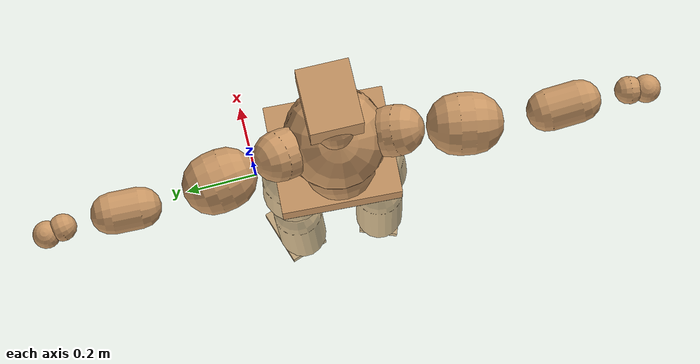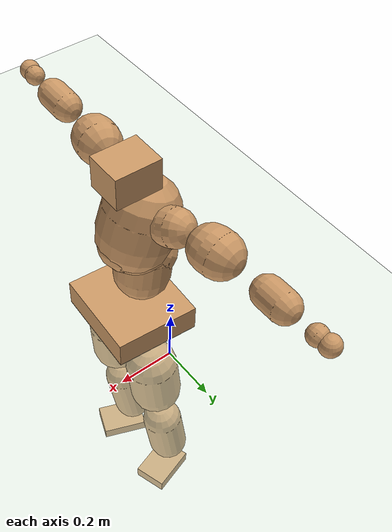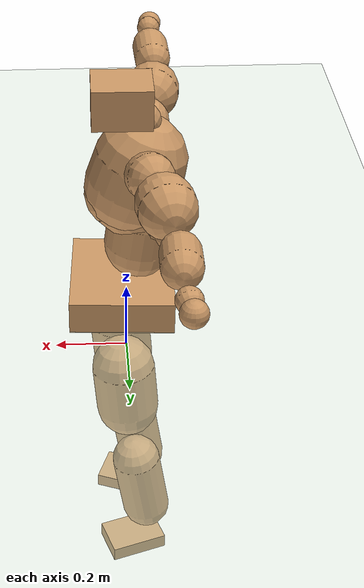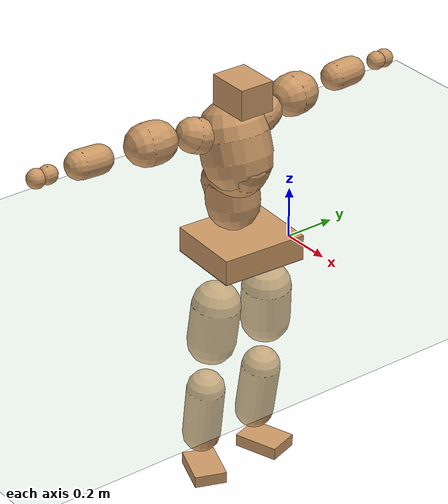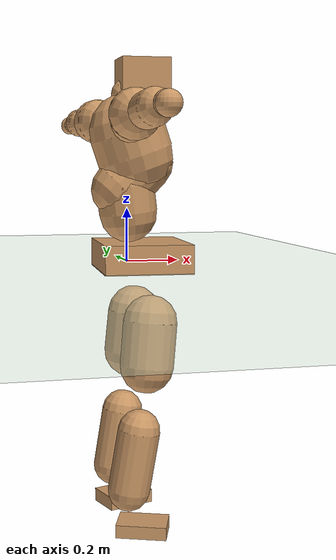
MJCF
<mujoco model="humanoid">
  <compiler coordinate="local" angle="radian"/>
  <default>
    <joint damping="0.0" armature="0.01" stiffness="0.0" limited="true"/>
    <geom conaffinity="1" condim="3" contype="7" margin="0.001" rgba="0.8 0.6 .4 1"/>
  </default>
  <asset>
    <texture type="skybox" builtin="gradient" rgb1=".4 .5 .6" rgb2="0 0 0" width="100" height="100"/>
    <texture builtin="flat" height="1278" mark="cross" markrgb="1 1 1" name="texgeom" random="0.01" rgb1="0.8 0.6 0.4" rgb2="0.8 0.6 0.4" type="cube" width="127"/>
    <texture builtin="checker" height="100" name="texplane" rgb1="0 0 0" rgb2="0.8 0.8 0.8" type="2d" width="100"/>
    <material name="MatPlane" reflectance="0.5" shininess="1" specular="1" texrepeat="60 60" texture="texplane"/>
    <material name="geom" texture="texgeom" texuniform="true"/>
  </asset>
  <worldbody>
    <light cutoff="100" diffuse="1 1 1" dir="-0 0 -1.3" directional="true" exponent="1" pos="0 0 1.3" specular=".1 .1 .1"/>
    <geom conaffinity="1" condim="3" name="floor" pos="0 0 0" rgba="0.8 0.9 0.8 1" size="100 100 .2" type="plane" material="MatPlane"/>
    <body name="Pelvis" pos="0.0054 -0.224 0.0613">
      <freejoint name="Pelvis"/>
      <geom type="box" contype="1" conaffinity="1" density="5359.374996" pos="-0.0057 0.0003 -0.0160" size="0.1529 0.1699 0.0502" quat="0.9996 0.0000 0.0000 -0.0281" name="Pelvis"/>
      <body name="L_Hip" pos="0.0079 0.1125 -0.1105">
        <joint name="L_Hip_x" type="hinge" pos="0 0 0" axis="1 0 0" stiffness="1600" damping="160" armature="0.02" range="-180.0000 180.0000"/>
        <joint name="L_Hip_y" type="hinge" pos="0 0 0" axis="0 1 0" stiffness="1600" damping="160" armature="0.02" range="-180.0000 180.0000"/>
        <joint name="L_Hip_z" type="hinge" pos="0 0 0" axis="0 0 1" stiffness="1600" damping="160" armature="0.02" range="-180.0000 180.0000"/>
        <geom type="capsule" contype="1" conaffinity="1" density="2040.816327" size="0.0943" fromto="-0.0111 0.0056 -0.1237 -0.0246 0.0124 -0.2749" name="L_Hip"/>
        <body name="L_Knee" pos="-0.0357 0.0179 -0.3986">
          <joint name="L_Knee_x" type="hinge" pos="0 0 0" axis="1 0 0" stiffness="1600" damping="160" armature="0.02" range="-180.0000 180.0000"/>
          <joint name="L_Knee_y" type="hinge" pos="0 0 0" axis="0 1 0" stiffness="1600" damping="160" armature="0.02" range="-180.0000 180.0000"/>
          <joint name="L_Knee_z" type="hinge" pos="0 0 0" axis="0 0 1" stiffness="1600" damping="160" armature="0.02" range="-180.0000 180.0000"/>
          <geom type="capsule" contype="1" conaffinity="1" density="1234.567901" size="0.0749" fromto="-0.0169 -0.0019 -0.1035 -0.0513 -0.0058 -0.3146" name="L_Knee"/>
          <body name="L_Ankle" pos="-0.0682 -0.0077 -0.418">
            <joint name="L_Ankle_x" type="hinge" pos="0 0 0" axis="1 0 0" stiffness="1600" damping="160" armature="0.02" range="-180.0000 180.0000"/>
            <joint name="L_Ankle_y" type="hinge" pos="0 0 0" axis="0 1 0" stiffness="1600" damping="160" armature="0.02" range="-180.0000 180.0000"/>
            <joint name="L_Ankle_z" type="hinge" pos="0 0 0" axis="0 0 1" stiffness="1600" damping="160" armature="0.02" range="-180.0000 180.0000"/>
            <geom type="box" contype="1" conaffinity="1" density="1000.000058" pos="0.0596 0.0195 -0.0300" size="0.0893 0.0623 0.0242" quat="0.9876 0.0000 0.0000 0.1572" name="L_Ankle"/>
            <body name="L_Toe" pos="0.1193 0.039 -0.06">
              <joint name="L_Toe_x" type="hinge" pos="0 0 0" axis="1 0 0" stiffness="1000" damping="100" armature="0.02" range="-180.0000 180.0000"/>
              <joint name="L_Toe_y" type="hinge" pos="0 0 0" axis="0 1 0" stiffness="1000" damping="100" armature="0.02" range="-180.0000 180.0000"/>
              <joint name="L_Toe_z" type="hinge" pos="0 0 0" axis="0 0 1" stiffness="1000" damping="100" armature="0.02" range="-180.0000 180.0000"/>
              <geom type="box" contype="1" conaffinity="1" density="7594283.285359" pos="0.0000 0.0000 0.0341" size="0.001 0.0029 0.0014" quat="0.9868 0.0000 0.0000 0.1622" name="L_Toe"/>
            </body>
          </body>
        </body>
      </body>
      <body name="R_Hip" pos="0.0098 -0.1094 -0.1117">
        <joint name="R_Hip_x" type="hinge" pos="0 0 0" axis="1 0 0" stiffness="1600" damping="160" armature="0.02" range="-180.0000 180.0000"/>
        <joint name="R_Hip_y" type="hinge" pos="0 0 0" axis="0 1 0" stiffness="1600" damping="160" armature="0.02" range="-180.0000 180.0000"/>
        <joint name="R_Hip_z" type="hinge" pos="0 0 0" axis="0 0 1" stiffness="1600" damping="160" armature="0.02" range="-180.0000 180.0000"/>
        <geom type="capsule" contype="1" conaffinity="1" density="2040.816327" size="0.0934" fromto="-0.0114 -0.0085 -0.1226 -0.0259 -0.0192 -0.2781" name="R_Hip"/>
        <body name="R_Knee" pos="-0.0373 -0.0277 -0.4007">
          <joint name="R_Knee_x" type="hinge" pos="0 0 0" axis="1 0 0" stiffness="1600" damping="160" armature="0.02" range="-180.0000 180.0000"/>
          <joint name="R_Knee_y" type="hinge" pos="0 0 0" axis="0 1 0" stiffness="1600" damping="160" armature="0.02" range="-180.0000 180.0000"/>
          <joint name="R_Knee_z" type="hinge" pos="0 0 0" axis="0 0 1" stiffness="1600" damping="160" armature="0.02" range="-180.0000 180.0000"/>
          <geom type="capsule" contype="1" conaffinity="1" density="1234.567901" size="0.074" fromto="-0.0166 0.0024 -0.1026 -0.0519 0.0076 -0.3201" name="R_Knee"/>
          <body name="R_Ankle" pos="-0.0686 0.01 -0.4227">
            <joint name="R_Ankle_x" type="hinge" pos="0 0 0" axis="1 0 0" stiffness="1600" damping="160" armature="0.02" range="-180.0000 180.0000"/>
            <joint name="R_Ankle_y" type="hinge" pos="0 0 0" axis="0 1 0" stiffness="1600" damping="160" armature="0.02" range="-180.0000 180.0000"/>
            <joint name="R_Ankle_z" type="hinge" pos="0 0 0" axis="0 0 1" stiffness="1600" damping="160" armature="0.02" range="-180.0000 180.0000"/>
            <geom type="box" contype="1" conaffinity="1" density="1000.000082" pos="0.0626 -0.0236 -0.0274" size="0.0887 0.0622 0.0229" quat="0.9838 0.0000 0.0000 -0.1793" name="R_Ankle"/>
            <body name="R_Toe" pos="0.1253 -0.0472 -0.0549">
              <joint name="R_Toe_x" type="hinge" pos="0 0 0" axis="1 0 0" stiffness="1000" damping="100" armature="0.02" range="-180.0000 180.0000"/>
              <joint name="R_Toe_y" type="hinge" pos="0 0 0" axis="0 1 0" stiffness="1000" damping="100" armature="0.02" range="-180.0000 180.0000"/>
              <joint name="R_Toe_z" type="hinge" pos="0 0 0" axis="0 0 1" stiffness="1000" damping="100" armature="0.02" range="-180.0000 180.0000"/>
              <geom type="box" contype="1" conaffinity="1" density="7276805.59404" pos="0.0000 0.0000 0.0322" size="0.0011 0.0027 0.0014" quat="0.9855 0.0000 0.0000 -0.1699" name="R_Toe"/>
            </body>
          </body>
        </body>
      </body>
      <body name="Torso" pos="-0.0518 -0.0012 0.1264">
        <joint name="Torso_x" type="hinge" pos="0 0 0" axis="1 0 0" stiffness="2000" damping="200" armature="0.02" range="-180.0000 180.0000"/>
        <joint name="Torso_y" type="hinge" pos="0 0 0" axis="0 1 0" stiffness="2000" damping="200" armature="0.02" range="-180.0000 180.0000"/>
        <joint name="Torso_z" type="hinge" pos="0 0 0" axis="0 0 1" stiffness="2000" damping="200" armature="0.02" range="-180.0000 180.0000"/>
        <geom type="capsule" contype="1" conaffinity="1" density="2040.816327" size="0.1019" fromto="-0.0126 0.0000 0.1012 -0.0011 0.0000 0.0085" name="Torso"/>
        <body name="Spine" pos="-0.0137 0 0.1096">
          <joint name="Spine_x" type="hinge" pos="0 0 0" axis="1 0 0" stiffness="2000" damping="200" armature="0.02" range="-180.0000 180.0000"/>
          <joint name="Spine_y" type="hinge" pos="0 0 0" axis="0 1 0" stiffness="2000" damping="200" armature="0.02" range="-180.0000 180.0000"/>
          <joint name="Spine_z" type="hinge" pos="0 0 0" axis="0 0 1" stiffness="2000" damping="200" armature="0.02" range="-180.0000 180.0000"/>
          <geom type="capsule" contype="1" conaffinity="1" density="2040.816327" size="0.0998" fromto="0.0709 -0.0001 0.0703 -0.0186 0.0000 -0.0184" name="Spine"/>
          <body name="Chest" pos="0.0523 0 0.0519">
            <joint name="Chest_x" type="hinge" pos="0 0 0" axis="1 0 0" stiffness="2000" damping="200" armature="0.02" range="-180.0000 180.0000"/>
            <joint name="Chest_y" type="hinge" pos="0 0 0" axis="0 1 0" stiffness="2000" damping="200" armature="0.02" range="-180.0000 180.0000"/>
            <joint name="Chest_z" type="hinge" pos="0 0 0" axis="0 0 1" stiffness="2000" damping="200" armature="0.02" range="-180.0000 180.0000"/>
            <geom type="capsule" contype="1" conaffinity="1" density="2040.816327" size="0.1335" fromto="-0.0429 0.0013 0.1264 -0.0150 0.0005 0.0441" name="Chest"/>
            <body name="Neck" pos="-0.0701 0.0053 0.2348">
              <joint name="Neck_x" type="hinge" pos="0 0 0" axis="1 0 0" stiffness="1000" damping="100" armature="0.02" range="-180.0000 180.0000"/>
              <joint name="Neck_y" type="hinge" pos="0 0 0" axis="0 1 0" stiffness="1000" damping="100" armature="0.02" range="-180.0000 180.0000"/>
              <joint name="Neck_z" type="hinge" pos="0 0 0" axis="0 0 1" stiffness="1000" damping="100" armature="0.02" range="-180.0000 180.0000"/>
              <geom type="capsule" contype="1" conaffinity="1" density="1000" size="0.0477" fromto="0.0342 -0.0017 0.0332 0.0196 -0.0010 0.0190" name="Neck"/>
              <body name="Head" pos="0.0537 -0.0027 0.0522">
                <joint name="Head_x" type="hinge" pos="0 0 0" axis="1 0 0" stiffness="1000" damping="100" armature="0.02" range="-180.0000 180.0000"/>
                <joint name="Head_y" type="hinge" pos="0 0 0" axis="0 1 0" stiffness="1000" damping="100" armature="0.02" range="-180.0000 180.0000"/>
                <joint name="Head_z" type="hinge" pos="0 0 0" axis="0 0 1" stiffness="1000" damping="100" armature="0.02" range="-180.0000 180.0000"/>
                <geom type="box" contype="1" conaffinity="1" density="2250.000263" pos="0.0279 -0.0003 0.0271" size="0.0842 0.0682 0.0593" quat="1.0000 0.0000 0.0000 -0.0061" name="Head"/>
              </body>
            </body>
            <body name="L_Thorax" pos="-0.0468 0.0972 0.1392">
              <joint name="L_Thorax_x" type="hinge" pos="0 0 0" axis="1 0 0" stiffness="1000" damping="100" armature="0.02" range="-180.0000 180.0000"/>
              <joint name="L_Thorax_y" type="hinge" pos="0 0 0" axis="0 1 0" stiffness="1000" damping="100" armature="0.02" range="-180.0000 180.0000"/>
              <joint name="L_Thorax_z" type="hinge" pos="0 0 0" axis="0 0 1" stiffness="1000" damping="100" armature="0.02" range="-180.0000 180.0000"/>
              <geom type="capsule" contype="1" conaffinity="1" density="1000" size="0.0664" fromto="-0.0138 0.0601 0.0246 -0.0075 0.0327 0.0134" name="L_Thorax"/>
              <body name="L_Shoulder" pos="-0.0213 0.0928 0.0379">
                <joint name="L_Shoulder_x" type="hinge" pos="0 0 0" axis="1 0 0" stiffness="1000" damping="100" armature="0.02" range="-720.0000 720.0000"/>
                <joint name="L_Shoulder_y" type="hinge" pos="0 0 0" axis="0 1 0" stiffness="1000" damping="100" armature="0.02" range="-720.0000 720.0000"/>
                <joint name="L_Shoulder_z" type="hinge" pos="0 0 0" axis="0 0 1" stiffness="1000" damping="100" armature="0.02" range="-720.0000 720.0000"/>
                <geom type="capsule" contype="1" conaffinity="1" density="1000" size="0.08" fromto="-0.0176 0.1086 -0.0031 -0.0231 0.1429 -0.0041" name="L_Shoulder"/>
                <body name="L_Elbow" pos="-0.0407 0.2515 -0.0072">
                  <joint name="L_Elbow_x" type="hinge" pos="0 0 0" axis="1 0 0" stiffness="1000" damping="100" armature="0.02" range="-720.0000 720.0000"/>
                  <joint name="L_Elbow_y" type="hinge" pos="0 0 0" axis="0 1 0" stiffness="1000" damping="100" armature="0.02" range="-720.0000 720.0000"/>
                  <joint name="L_Elbow_z" type="hinge" pos="0 0 0" axis="0 0 1" stiffness="1000" damping="100" armature="0.02" range="-720.0000 720.0000"/>
                  <geom type="capsule" contype="1" conaffinity="1" density="1000" size="0.0539" fromto="0.0022 0.0837 0.0049 0.0042 0.1574 0.0092" name="L_Elbow"/>
                  <body name="L_Wrist" pos="0.0064 0.2411 0.0142">
                    <joint name="L_Wrist_x" type="hinge" pos="0 0 0" axis="1 0 0" stiffness="600" damping="60" armature="0.02" range="-180.0000 180.0000"/>
                    <joint name="L_Wrist_y" type="hinge" pos="0 0 0" axis="0 1 0" stiffness="600" damping="60" armature="0.02" range="-180.0000 180.0000"/>
                    <joint name="L_Wrist_z" type="hinge" pos="0 0 0" axis="0 0 1" stiffness="600" damping="60" armature="0.02" range="-180.0000 180.0000"/>
                    <geom type="capsule" contype="1" conaffinity="1" density="1000" size="0.0348" fromto="-0.0068 0.0426 -0.0049 -0.0071 0.0445 -0.0052" name="L_Wrist"/>
                    <body name="L_Hand" pos="-0.014 0.0871 -0.0101">
                      <joint name="L_Hand_x" type="hinge" pos="0 0 0" axis="1 0 0" stiffness="600" damping="60" armature="0.02" range="-180.0000 180.0000"/>
                      <joint name="L_Hand_y" type="hinge" pos="0 0 0" axis="0 1 0" stiffness="600" damping="60" armature="0.02" range="-180.0000 180.0000"/>
                      <joint name="L_Hand_z" type="hinge" pos="0 0 0" axis="0 0 1" stiffness="600" damping="60" armature="0.02" range="-180.0000 180.0000"/>
                      <geom type="sphere" contype="1" conaffinity="1" density="1000" size="0.0356" pos="0.0000 0.0000 0.0000" name="L_Hand"/>
                    </body>
                  </body>
                </body>
              </body>
            </body>
            <body name="R_Thorax" pos="-0.0569 -0.0971 0.1376">
              <joint name="R_Thorax_x" type="hinge" pos="0 0 0" axis="1 0 0" stiffness="1000" damping="100" armature="0.02" range="-180.0000 180.0000"/>
              <joint name="R_Thorax_y" type="hinge" pos="0 0 0" axis="0 1 0" stiffness="1000" damping="100" armature="0.02" range="-180.0000 180.0000"/>
              <joint name="R_Thorax_z" type="hinge" pos="0 0 0" axis="0 0 1" stiffness="1000" damping="100" armature="0.02" range="-180.0000 180.0000"/>
              <geom type="capsule" contype="1" conaffinity="1" density="1000" size="0.0668" fromto="-0.0110 -0.0612 0.0245 -0.0070 -0.0387 0.0155" name="R_Thorax"/>
              <body name="R_Shoulder" pos="-0.018 -0.0999 0.04">
                <joint name="R_Shoulder_x" type="hinge" pos="0 0 0" axis="1 0 0" stiffness="1000" damping="100" armature="0.02" range="-720.0000 720.0000"/>
                <joint name="R_Shoulder_y" type="hinge" pos="0 0 0" axis="0 1 0" stiffness="1000" damping="100" armature="0.02" range="-720.0000 720.0000"/>
                <joint name="R_Shoulder_z" type="hinge" pos="0 0 0" axis="0 0 1" stiffness="1000" damping="100" armature="0.02" range="-720.0000 720.0000"/>
                <geom type="capsule" contype="1" conaffinity="1" density="1000" size="0.0809" fromto="-0.0168 -0.1095 -0.0062 -0.0228 -0.1482 -0.0084" name="R_Shoulder"/>
                <body name="R_Elbow" pos="-0.0396 -0.2577 -0.0147">
                  <joint name="R_Elbow_x" type="hinge" pos="0 0 0" axis="1 0 0" stiffness="1000" damping="100" armature="0.02" range="-720.0000 720.0000"/>
                  <joint name="R_Elbow_y" type="hinge" pos="0 0 0" axis="0 1 0" stiffness="1000" damping="100" armature="0.02" range="-720.0000 720.0000"/>
                  <joint name="R_Elbow_z" type="hinge" pos="0 0 0" axis="0 0 1" stiffness="1000" damping="100" armature="0.02" range="-720.0000 720.0000"/>
                  <geom type="capsule" contype="1" conaffinity="1" density="1000" size="0.0552" fromto="0.0025 -0.0849 0.0064 0.0051 -0.1694 0.0127" name="R_Elbow"/>
                  <body name="R_Wrist" pos="0.0076 -0.2543 0.0191">
                    <joint name="R_Wrist_x" type="hinge" pos="0 0 0" axis="1 0 0" stiffness="600" damping="60" armature="0.02" range="-180.0000 180.0000"/>
                    <joint name="R_Wrist_y" type="hinge" pos="0 0 0" axis="0 1 0" stiffness="600" damping="60" armature="0.02" range="-180.0000 180.0000"/>
                    <joint name="R_Wrist_z" type="hinge" pos="0 0 0" axis="0 0 1" stiffness="600" damping="60" armature="0.02" range="-180.0000 180.0000"/>
                    <geom type="capsule" contype="1" conaffinity="1" density="1000" size="0.0362" fromto="-0.0061 -0.0437 -0.0039 -0.0063 -0.0457 -0.0041" name="R_Wrist"/>
                    <body name="R_Hand" pos="-0.0124 -0.0895 -0.008">
                      <joint name="R_Hand_x" type="hinge" pos="0 0 0" axis="1 0 0" stiffness="600" damping="60" armature="0.02" range="-180.0000 180.0000"/>
                      <joint name="R_Hand_y" type="hinge" pos="0 0 0" axis="0 1 0" stiffness="600" damping="60" armature="0.02" range="-180.0000 180.0000"/>
                      <joint name="R_Hand_z" type="hinge" pos="0 0 0" axis="0 0 1" stiffness="600" damping="60" armature="0.02" range="-180.0000 180.0000"/>
                      <geom type="sphere" contype="1" conaffinity="1" density="1000" size="0.0367" pos="0.0000 0.0000 0.0000" name="R_Hand"/>
                    </body>
                  </body>
                </body>
              </body>
            </body>
          </body>
        </body>
      </body>
    </body>
  </worldbody>
  <actuator>
    <motor name="L_Hip_x" joint="L_Hip_x" gear="500"/>
    <motor name="L_Hip_y" joint="L_Hip_y" gear="500"/>
    <motor name="L_Hip_z" joint="L_Hip_z" gear="500"/>
    <motor name="L_Knee_x" joint="L_Knee_x" gear="500"/>
    <motor name="L_Knee_y" joint="L_Knee_y" gear="500"/>
    <motor name="L_Knee_z" joint="L_Knee_z" gear="500"/>
    <motor name="L_Ankle_x" joint="L_Ankle_x" gear="500"/>
    <motor name="L_Ankle_y" joint="L_Ankle_y" gear="500"/>
    <motor name="L_Ankle_z" joint="L_Ankle_z" gear="500"/>
    <motor name="L_Toe_x" joint="L_Toe_x" gear="500"/>
    <motor name="L_Toe_y" joint="L_Toe_y" gear="500"/>
    <motor name="L_Toe_z" joint="L_Toe_z" gear="500"/>
    <motor name="R_Hip_x" joint="R_Hip_x" gear="500"/>
    <motor name="R_Hip_y" joint="R_Hip_y" gear="500"/>
    <motor name="R_Hip_z" joint="R_Hip_z" gear="500"/>
    <motor name="R_Knee_x" joint="R_Knee_x" gear="500"/>
    <motor name="R_Knee_y" joint="R_Knee_y" gear="500"/>
    <motor name="R_Knee_z" joint="R_Knee_z" gear="500"/>
    <motor name="R_Ankle_x" joint="R_Ankle_x" gear="500"/>
    <motor name="R_Ankle_y" joint="R_Ankle_y" gear="500"/>
    <motor name="R_Ankle_z" joint="R_Ankle_z" gear="500"/>
    <motor name="R_Toe_x" joint="R_Toe_x" gear="500"/>
    <motor name="R_Toe_y" joint="R_Toe_y" gear="500"/>
    <motor name="R_Toe_z" joint="R_Toe_z" gear="500"/>
    <motor name="Torso_x" joint="Torso_x" gear="500"/>
    <motor name="Torso_y" joint="Torso_y" gear="500"/>
    <motor name="Torso_z" joint="Torso_z" gear="500"/>
    <motor name="Spine_x" joint="Spine_x" gear="500"/>
    <motor name="Spine_y" joint="Spine_y" gear="500"/>
    <motor name="Spine_z" joint="Spine_z" gear="500"/>
    <motor name="Chest_x" joint="Chest_x" gear="500"/>
    <motor name="Chest_y" joint="Chest_y" gear="500"/>
    <motor name="Chest_z" joint="Chest_z" gear="500"/>
    <motor name="Neck_x" joint="Neck_x" gear="500"/>
    <motor name="Neck_y" joint="Neck_y" gear="500"/>
    <motor name="Neck_z" joint="Neck_z" gear="500"/>
    <motor name="Head_x" joint="Head_x" gear="500"/>
    <motor name="Head_y" joint="Head_y" gear="500"/>
    <motor name="Head_z" joint="Head_z" gear="500"/>
    <motor name="L_Thorax_x" joint="L_Thorax_x" gear="500"/>
    <motor name="L_Thorax_y" joint="L_Thorax_y" gear="500"/>
    <motor name="L_Thorax_z" joint="L_Thorax_z" gear="500"/>
    <motor name="L_Shoulder_x" joint="L_Shoulder_x" gear="500"/>
    <motor name="L_Shoulder_y" joint="L_Shoulder_y" gear="500"/>
    <motor name="L_Shoulder_z" joint="L_Shoulder_z" gear="500"/>
    <motor name="L_Elbow_x" joint="L_Elbow_x" gear="500"/>
    <motor name="L_Elbow_y" joint="L_Elbow_y" gear="500"/>
    <motor name="L_Elbow_z" joint="L_Elbow_z" gear="500"/>
    <motor name="L_Wrist_x" joint="L_Wrist_x" gear="500"/>
    <motor name="L_Wrist_y" joint="L_Wrist_y" gear="500"/>
    <motor name="L_Wrist_z" joint="L_Wrist_z" gear="500"/>
    <motor name="L_Hand_x" joint="L_Hand_x" gear="500"/>
    <motor name="L_Hand_y" joint="L_Hand_y" gear="500"/>
    <motor name="L_Hand_z" joint="L_Hand_z" gear="500"/>
    <motor name="R_Thorax_x" joint="R_Thorax_x" gear="500"/>
    <motor name="R_Thorax_y" joint="R_Thorax_y" gear="500"/>
    <motor name="R_Thorax_z" joint="R_Thorax_z" gear="500"/>
    <motor name="R_Shoulder_x" joint="R_Shoulder_x" gear="500"/>
    <motor name="R_Shoulder_y" joint="R_Shoulder_y" gear="500"/>
    <motor name="R_Shoulder_z" joint="R_Shoulder_z" gear="500"/>
    <motor name="R_Elbow_x" joint="R_Elbow_x" gear="500"/>
    <motor name="R_Elbow_y" joint="R_Elbow_y" gear="500"/>
    <motor name="R_Elbow_z" joint="R_Elbow_z" gear="500"/>
    <motor name="R_Wrist_x" joint="R_Wrist_x" gear="500"/>
    <motor name="R_Wrist_y" joint="R_Wrist_y" gear="500"/>
    <motor name="R_Wrist_z" joint="R_Wrist_z" gear="500"/>
    <motor name="R_Hand_x" joint="R_Hand_x" gear="500"/>
    <motor name="R_Hand_y" joint="R_Hand_y" gear="500"/>
    <motor name="R_Hand_z" joint="R_Hand_z" gear="500"/>
  </actuator>
  <contact>
    <exclude body1="Torso" body2="Chest"/>
    <exclude body1="Head" body2="Chest"/>
    <exclude body1="R_Knee" body2="R_Toe"/>
    <exclude body1="R_Knee" body2="L_Ankle"/>
    <exclude body1="R_Knee" body2="L_Toe"/>
    <exclude body1="L_Knee" body2="L_Toe"/>
    <exclude body1="L_Knee" body2="R_Ankle"/>
    <exclude body1="L_Knee" body2="R_Toe"/>
    <exclude body1="L_Shoulder" body2="Chest"/>
    <exclude body1="R_Shoulder" body2="Chest"/>
  </contact>
  <sensor/>
  <size njmax="700" nconmax="700"/>
</mujoco>
